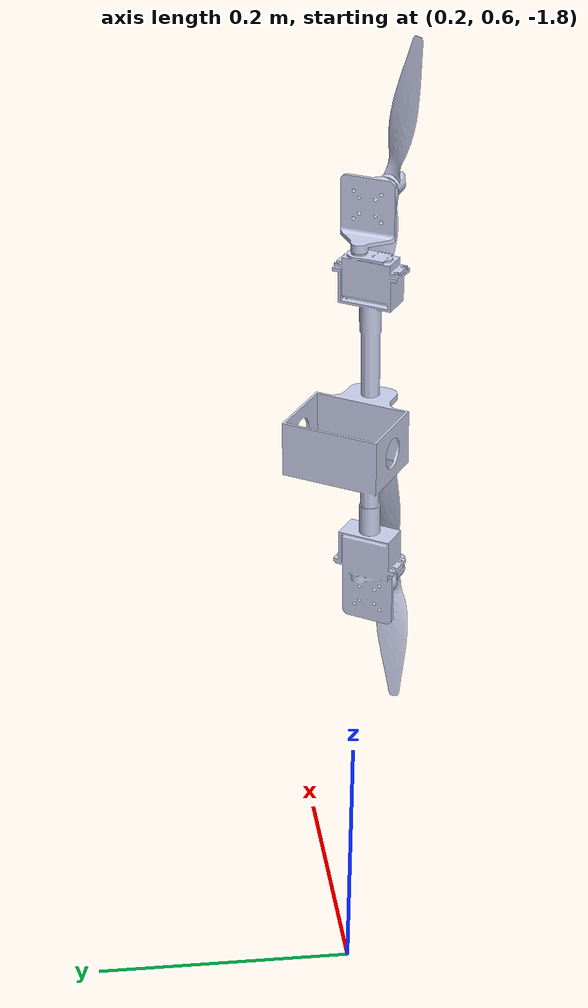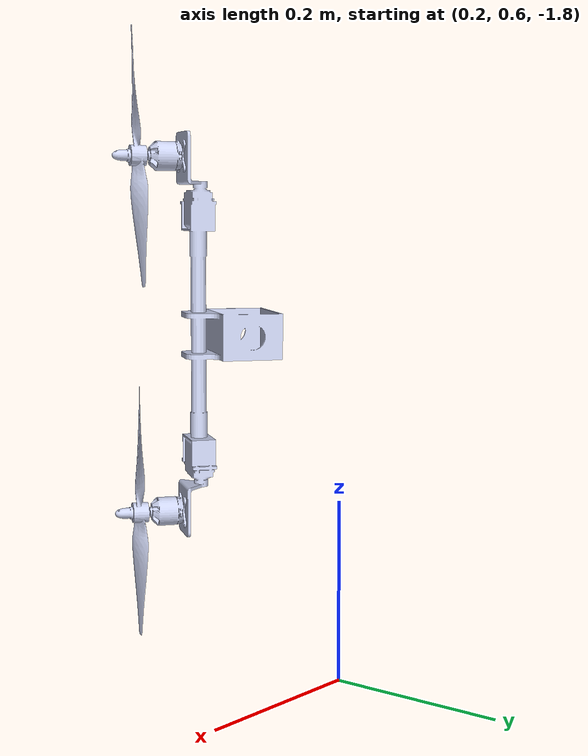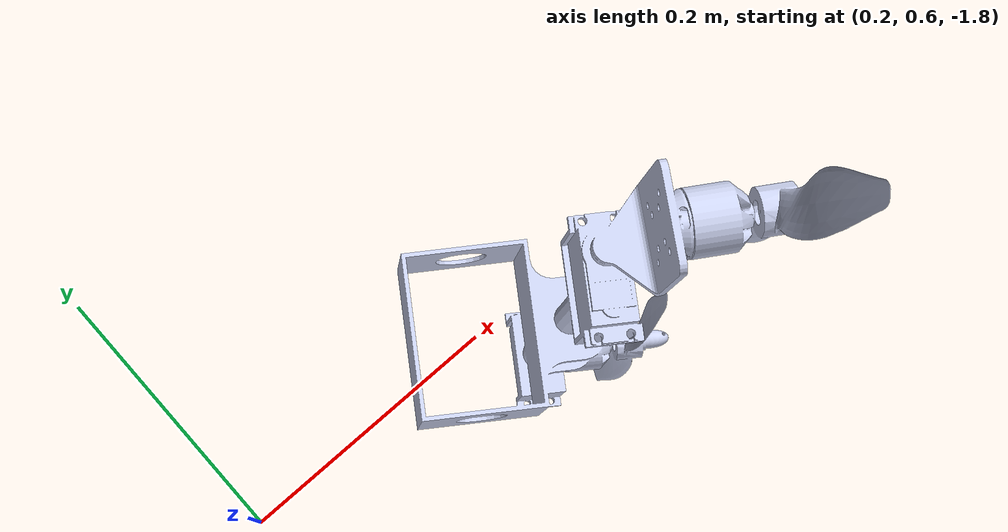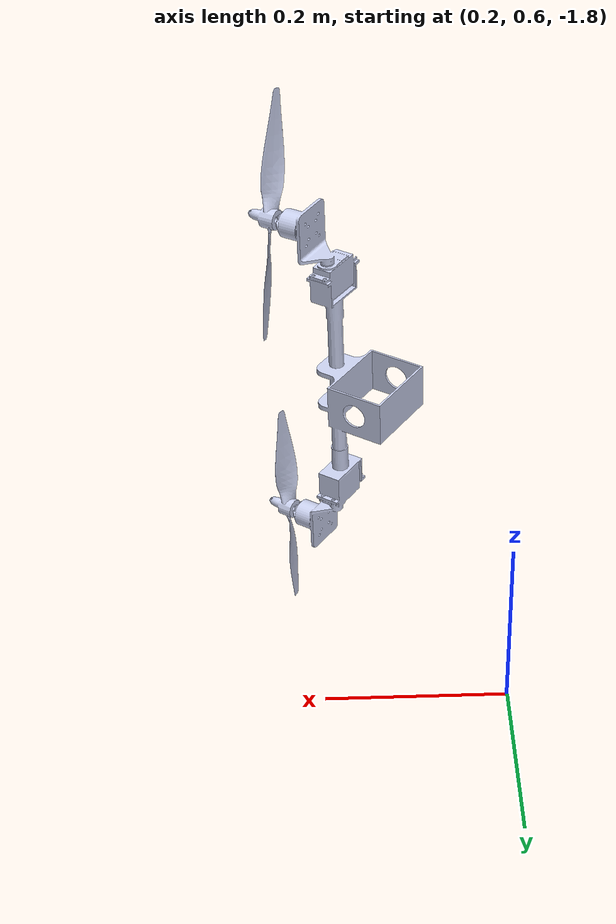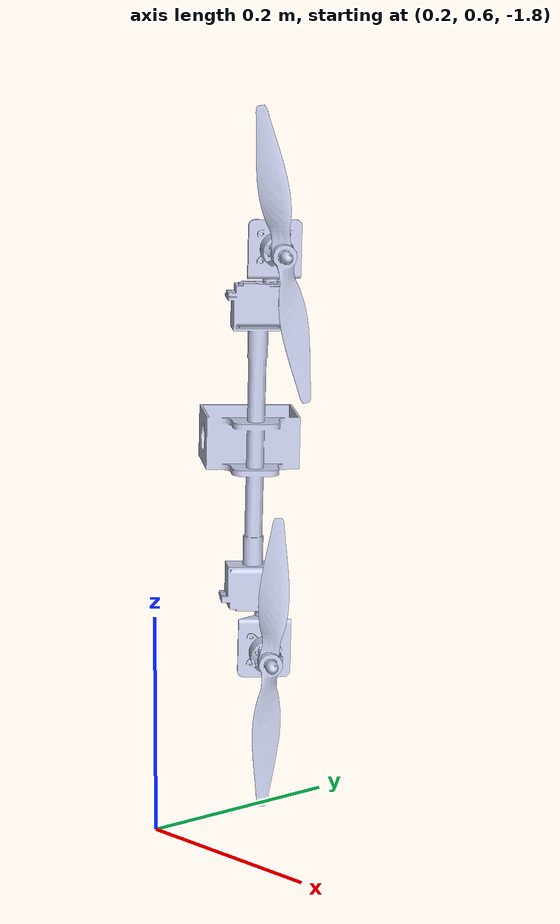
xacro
<?xml version="1.0"?>
<robot name="thrusters" xmlns:xacro="http://www.ros.org/wiki/xacro">

  <!-- virtual root so this file visualises standalone -->
  <link name="thrusters_base" />

  <!-- carrying link -->
  <link name="link1_arm_roll">
    <inertial>
      <origin xyz="0.391146951699728 0.562691269918003 -1.40979996564852" rpy="0 0 0" />
      <mass value="0.236214339843921" />
      <inertia ixx="0.000102401751755143" ixy="-4.32094643119988E-06" ixz="-2.34507039099166E-07"
               iyy="9.86396832914087E-05" iyz="-3.46801744834344E-07" izz="7.99788746652359E-05" />
    </inertial>
    <visual>
      <origin xyz="0 0 0" rpy="0 0 0" />
      <geometry>
        <mesh filename="package://serial-articulated/meshes/link1_arm_roll.STL" />
      </geometry>
      <material name="slate">
        <color rgba="0.792156862745098 0.819607843137255 0.933333333333333 1" />
      </material>
    </visual>
    <collision>
      <origin xyz="0 0 0" rpy="0 0 0" />
      <geometry>
        <mesh filename="package://serial-articulated/meshes/link1_arm_roll.STL" />
      </geometry>
    </collision>
  </link>

  <!-- servo output frames (massless, no geometry) -->
  <link name="link1_right_tilt" />
  <link name="link1_left_tilt" />

  <!-- right propeller -->
  <link name="link1_right_spin">
    <inertial>
      <origin xyz="6.93158392350846E-07 6.29945029195778E-08 0.00430821663494839" rpy="0 0 0" />
      <mass value="0.0119145513741783" />
      <inertia ixx="4.76119684476372E-07" ixy="-1.11645184011423E-06" ixz="-5.15182079685355E-12"
               iyy="2.0399736262995E-05" iyz="-2.98523010228511E-12" izz="2.05871235175461E-05" />
    </inertial>
    <visual>
      <origin xyz="0 0 0" rpy="0 0 0" />
      <geometry>
        <mesh filename="package://serial-articulated/meshes/link1_right_spin.STL" />
      </geometry>
      <material name="slate">
        <color rgba="0.792156862745098 0.819607843137255 0.933333333333333 1" />
      </material>
    </visual>
    <collision>
      <origin xyz="0 0 0" rpy="0 0 0" />
      <geometry>
        <mesh filename="package://serial-articulated/meshes/link1_right_spin.STL" />
      </geometry>
    </collision>
  </link>

  <!-- left propeller -->
  <link name="link1_left_spin">
    <inertial>
      <origin xyz="-6.65762375562373E-07 7.51971221471526E-08 0.00430822010087943" rpy="0 0 0" />
      <mass value="0.0119145619562564" />
      <inertia ixx="8.92563367215736E-07" ixy="3.06123858172512E-06" ixz="5.66717622274926E-12"
               iyy="1.99835060436476E-05" iyz="1.6706195567006E-12" izz="2.05873388306E-05" />
    </inertial>
    <visual>
      <origin xyz="0 0 0" rpy="0 0 0" />
      <geometry>
        <mesh filename="package://serial-articulated/meshes/link1_left_spin.STL" />
      </geometry>
      <material name="slate">
        <color rgba="0.792156862745098 0.819607843137255 0.933333333333333 1" />
      </material>
    </visual>
    <collision>
      <origin xyz="0 0 0" rpy="0 0 0" />
      <geometry>
        <mesh filename="package://serial-articulated/meshes/link1_left_spin.STL" />
      </geometry>
    </collision>
  </link>

  <!-- joints -->
  <joint name="arm_mount" type="fixed">
    <origin xyz="0 0 0" rpy="0 0 0" />
    <parent link="thrusters_base" />
    <child link="link1_arm_roll" />
  </joint>

  <!-- right servo at prop mount, axis perpendicular to right spin axis -->
  <joint name="link1_right_servo" type="revolute">
    <origin xyz="0.44002 0.52942 -1.5835" rpy="0 0 0" />
    <parent link="link1_arm_roll" />
    <child link="link1_right_tilt" />
    <axis xyz="0.98248 0 -0.18627" />
    <limit lower="-1.5708" upper="1.5708" effort="1.0" velocity="1.0" />
  </joint>

  <!-- right prop spins at tilt origin (no position change) -->
  <joint name="link1_right_prop" type="continuous">
    <origin xyz="0 0 0" rpy="-1.5798 -1.5473 0.97838" />
    <parent link="link1_right_tilt" />
    <child link="link1_right_spin" />
    <axis xyz="-0.18627 0.0062962 -0.98248" />
  </joint>

  <!-- left servo at prop mount, axis perpendicular to left spin axis -->
  <joint name="link1_left_servo" type="revolute">
    <origin xyz="0.44605 0.53925 -1.237" rpy="0 0 0" />
    <parent link="link1_arm_roll" />
    <child link="link1_left_tilt" />
    <axis xyz="0.99879 0 0" />
    <limit lower="-1.5708" upper="1.5708" effort="1.0" velocity="1.0" />
  </joint>

  <!-- left prop spins at tilt origin (no position change) -->
  <joint name="link1_left_prop" type="continuous">
    <origin xyz="0 0 0" rpy="1.5306 1.5473 -2.1632" />
    <parent link="link1_left_tilt" />
    <child link="link1_left_spin" />
    <axis xyz="0 0.049088 -0.99879" />
  </joint>

</robot>
